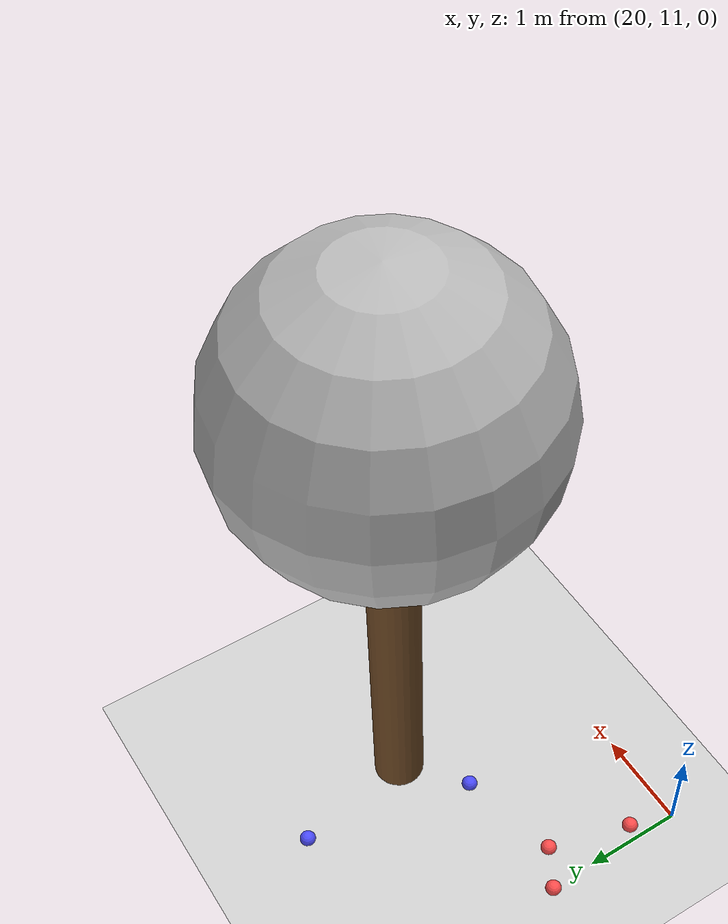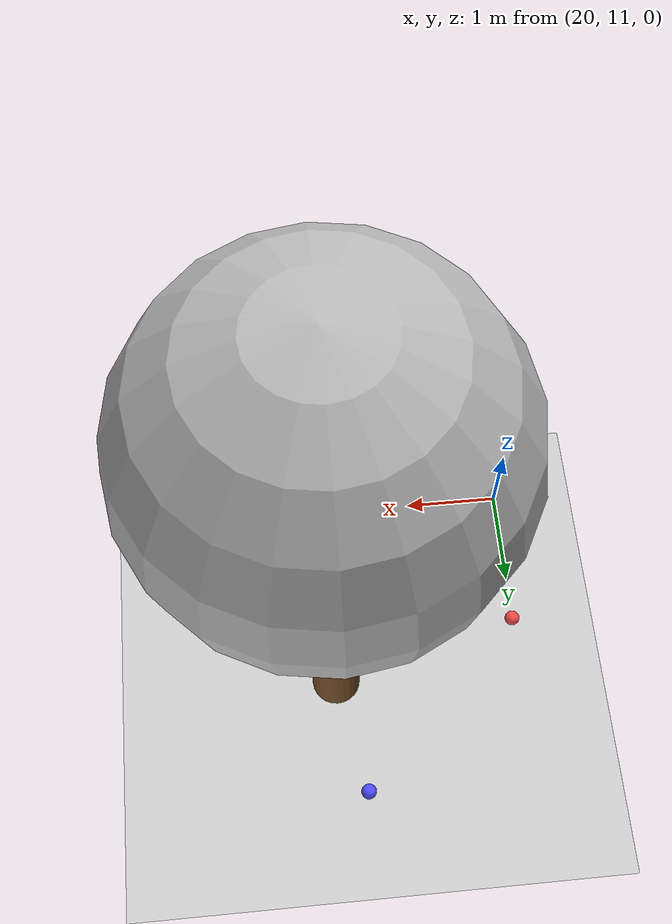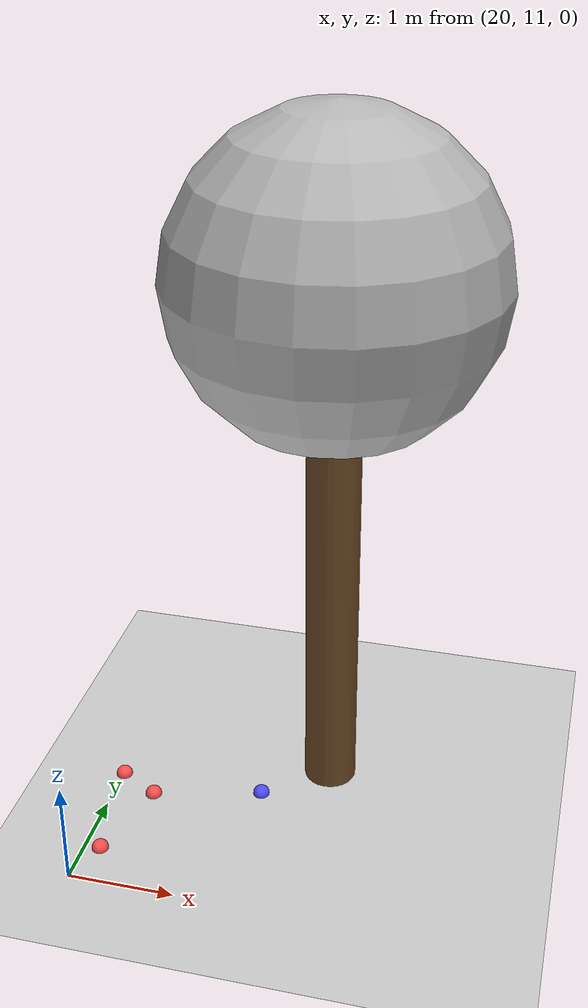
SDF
<sdf version="1.7">
 <world name="default">
  <model name="ground_plane">
   <static>1</static>
   <link name="link">
    <collision name="collision">
     <geometry><plane><normal>0 0 1</normal><size>100 100</size></plane></geometry>
     <surface>
      <contact><collide_bitmask>65535</collide_bitmask></contact>
      <friction><ode><mu>100</mu><mu2>50</mu2></ode></friction>
     </surface>
    </collision>
    <visual name="visual">
     <cast_shadows>0</cast_shadows>
     <geometry><plane><normal>0 0 1</normal><size>100 100</size></plane></geometry>
     <material>
      <script><uri>file://media/materials/scripts/gazebo.material</uri><name>Gazebo/Grey</name></script>
     </material>
    </visual>
   </link>
  </model>
  <model name="tree_simple_62">
   <static>1</static>
   <link name="link">
    <pose>0 0 0.1 0 -0 0</pose>
    <inertial>
     <mass>666</mass>
     <inertia>
      <ixx>0.0861167</ixx>
      <ixy>0</ixy>
      <ixz>0</ixz>
      <iyy>0.0861167</iyy>
      <iyz>0</iyz>
      <izz>0.0861167</izz>
     </inertia>
    </inertial>
    <collision name="collision_trunk">
     <pose>0 0 2 0 -0 0</pose>
     <geometry><cylinder><radius>0.25</radius><length>4</length></cylinder></geometry>
     <surface>
      <contact>
       <poissons_ratio>0.347</poissons_ratio>
       <elastic_modulus>8.8e+09</elastic_modulus>
       <ode><kp>100000</kp><kd>100</kd><max_vel>100</max_vel><min_depth>0.001</min_depth></ode>
      </contact>
      <friction>
       <torsional>
        <coefficient>1</coefficient>
        <use_patch_radius>0</use_patch_radius>
        <surface_radius>0.01</surface_radius>
       </torsional>
      </friction>
     </surface>
    </collision>
    <collision name="collision_treetop">
     <pose>0 0 5.2 0 -0 0</pose>
     <geometry><sphere><radius>1.5</radius></sphere></geometry>
     <surface>
      <contact>
       <poissons_ratio>0.347</poissons_ratio>
       <elastic_modulus>8.8e+09</elastic_modulus>
       <ode><kp>100000</kp><kd>100</kd><max_vel>100</max_vel><min_depth>0.001</min_depth></ode>
      </contact>
      <friction>
       <torsional>
        <coefficient>1</coefficient>
        <use_patch_radius>0</use_patch_radius>
        <surface_radius>0.01</surface_radius>
       </torsional>
      </friction>
     </surface>
    </collision>
    <visual name="trunk">
     <pose>0 0 2 0 -0 0</pose>
     <geometry><cylinder><radius>0.25</radius><length>4</length></cylinder></geometry>
     <material>
      <script>
       <uri>model://tree_simple/scripts</uri>
       <uri>model://tree_simple/materials/textures</uri>
       <name>TreeSimple/Trunk</name>
      </script>
     </material>
    </visual>
    <visual name="treetop">
     <pose>0 0 5.2 0 -0 0</pose>
     <geometry><sphere><radius>1.5</radius></sphere></geometry>
     <material>
      <script>
       <uri>model://tree_simple/scripts</uri>
       <uri>model://tree_simple/materials/textures</uri>
       <name>TreeSimple/Treetop</name>
      </script>
     </material>
    </visual>
   </link>
   <pose>22 13 -0.1 0 -0 0</pose>
  </model>
  <model name="seed_blue_136">
   <link name="link">
    <inertial>
     <mass>1</mass>
     <inertia><ixx>0.1</ixx><ixy>0</ixy><ixz>0</ixz><iyy>0.1</iyy><iyz>0</iyz><izz>0.1</izz></inertia>
    </inertial>
    <visual name="visual">
     <geometry><sphere><radius>0.08</radius></sphere></geometry>
     <material>
      <script><name>Gazebo/Grey</name><uri>file://media/materials/scripts/gazebo.material</uri></script>
      <shader type="pixel"><normal_map>__default__</normal_map></shader>
      <ambient>0.3 0.3 1 1</ambient>
      <diffuse>0.7 0.7 0.7 1</diffuse>
      <specular>0.01 0.01 0.01 1</specular>
      <emissive>0 0 0 1</emissive>
     </material>
    </visual>
    <collision name="collision">
     <geometry><sphere><radius>0.0005</radius></sphere></geometry>
     <surface>
      <friction>
       <ode><mu>1</mu><mu2>1</mu2><fdir1>0 0 0</fdir1><slip1>0</slip1><slip2>0</slip2></ode>
       <torsional>
        <coefficient>1</coefficient>
        <patch_radius>0</patch_radius>
        <surface_radius>0</surface_radius>
        <use_patch_radius>1</use_patch_radius>
        <ode><slip>0</slip></ode>
       </torsional>
      </friction>
      <bounce><restitution_coefficient>0</restitution_coefficient><threshold>1e+06</threshold></bounce>
      <contact>
       <collide_without_contact>0</collide_without_contact>
       <collide_without_contact_bitmask>1</collide_without_contact_bitmask>
       <collide_bitmask>1</collide_bitmask>
       <ode>
        <soft_cfm>0</soft_cfm>
        <soft_erp>0.2</soft_erp>
        <kp>1e+13</kp>
        <kd>1</kd>
        <max_vel>0.01</max_vel>
        <min_depth>0</min_depth>
       </ode>
       <bullet>
        <split_impulse>1</split_impulse>
        <split_impulse_penetration_threshold>-0.01</split_impulse_penetration_threshold>
        <soft_cfm>0</soft_cfm>
        <soft_erp>0.2</soft_erp>
        <kp>1e+13</kp>
        <kd>1</kd>
       </bullet>
      </contact>
     </surface>
    </collision>
   </link>
   <static>0</static>
   <pose>21.7656 14.2199 0.0005 0 -0 0</pose>
  </model>
  <model name="seed_blue_141">
   <link name="link">
    <inertial>
     <mass>1</mass>
     <inertia><ixx>0.1</ixx><ixy>0</ixy><ixz>0</ixz><iyy>0.1</iyy><iyz>0</iyz><izz>0.1</izz></inertia>
    </inertial>
    <visual name="visual">
     <geometry><sphere><radius>0.08</radius></sphere></geometry>
     <material>
      <script><name>Gazebo/Grey</name><uri>file://media/materials/scripts/gazebo.material</uri></script>
      <shader type="pixel"><normal_map>__default__</normal_map></shader>
      <ambient>0.3 0.3 1 1</ambient>
      <diffuse>0.7 0.7 0.7 1</diffuse>
      <specular>0.01 0.01 0.01 1</specular>
      <emissive>0 0 0 1</emissive>
     </material>
    </visual>
    <collision name="collision">
     <geometry><sphere><radius>0.0005</radius></sphere></geometry>
     <surface>
      <friction>
       <ode><mu>1</mu><mu2>1</mu2><fdir1>0 0 0</fdir1><slip1>0</slip1><slip2>0</slip2></ode>
       <torsional>
        <coefficient>1</coefficient>
        <patch_radius>0</patch_radius>
        <surface_radius>0</surface_radius>
        <use_patch_radius>1</use_patch_radius>
        <ode><slip>0</slip></ode>
       </torsional>
      </friction>
      <bounce><restitution_coefficient>0</restitution_coefficient><threshold>1e+06</threshold></bounce>
      <contact>
       <collide_without_contact>0</collide_without_contact>
       <collide_without_contact_bitmask>1</collide_without_contact_bitmask>
       <collide_bitmask>1</collide_bitmask>
       <ode>
        <soft_cfm>0</soft_cfm>
        <soft_erp>0.2</soft_erp>
        <kp>1e+13</kp>
        <kd>1</kd>
        <max_vel>0.01</max_vel>
        <min_depth>0</min_depth>
       </ode>
       <bullet>
        <split_impulse>1</split_impulse>
        <split_impulse_penetration_threshold>-0.01</split_impulse_penetration_threshold>
        <soft_cfm>0</soft_cfm>
        <soft_erp>0.2</soft_erp>
        <kp>1e+13</kp>
        <kd>1</kd>
       </bullet>
      </contact>
     </surface>
    </collision>
   </link>
   <static>0</static>
   <pose>21.4153 12.512 0.0005 0 -0 0</pose>
  </model>
  <model name="seed_red_266">
   <link name="link">
    <inertial>
     <mass>1</mass>
     <inertia><ixx>0.1</ixx><ixy>0</ixy><ixz>0</ixz><iyy>0.1</iyy><iyz>0</iyz><izz>0.1</izz></inertia>
    </inertial>
    <visual name="visual">
     <geometry><sphere><radius>0.08</radius></sphere></geometry>
     <material>
      <script><name>Gazebo/Grey</name><uri>file://media/materials/scripts/gazebo.material</uri></script>
      <shader type="pixel"><normal_map>__default__</normal_map></shader>
      <ambient>1 0.3 0.3 1</ambient>
      <diffuse>0.7 0.7 0.7 1</diffuse>
      <specular>0.01 0.01 0.01 1</specular>
      <emissive>0 0 0 1</emissive>
     </material>
    </visual>
    <collision name="collision">
     <geometry><sphere><radius>0.0005</radius></sphere></geometry>
     <surface>
      <friction>
       <ode><mu>1</mu><mu2>1</mu2><fdir1>0 0 0</fdir1><slip1>0</slip1><slip2>0</slip2></ode>
       <torsional>
        <coefficient>1</coefficient>
        <patch_radius>0</patch_radius>
        <surface_radius>0</surface_radius>
        <use_patch_radius>1</use_patch_radius>
        <ode><slip>0</slip></ode>
       </torsional>
      </friction>
      <bounce><restitution_coefficient>0</restitution_coefficient><threshold>1e+06</threshold></bounce>
      <contact>
       <collide_without_contact>0</collide_without_contact>
       <collide_without_contact_bitmask>1</collide_without_contact_bitmask>
       <collide_bitmask>1</collide_bitmask>
       <ode>
        <soft_cfm>0</soft_cfm>
        <soft_erp>0.2</soft_erp>
        <kp>1e+13</kp>
        <kd>1</kd>
        <max_vel>0.01</max_vel>
        <min_depth>0</min_depth>
       </ode>
       <bullet>
        <split_impulse>1</split_impulse>
        <split_impulse_penetration_threshold>-0.01</split_impulse_penetration_threshold>
        <soft_cfm>0</soft_cfm>
        <soft_erp>0.2</soft_erp>
        <kp>1e+13</kp>
        <kd>1</kd>
       </bullet>
      </contact>
     </surface>
    </collision>
   </link>
   <static>0</static>
   <pose>20.147 11.4184 0.0005 0 -0 0</pose>
  </model>
  <model name="seed_red_267">
   <link name="link">
    <inertial>
     <mass>1</mass>
     <inertia><ixx>0.1</ixx><ixy>0</ixy><ixz>0</ixz><iyy>0.1</iyy><iyz>0</iyz><izz>0.1</izz></inertia>
    </inertial>
    <visual name="visual">
     <geometry><sphere><radius>0.08</radius></sphere></geometry>
     <material>
      <script><name>Gazebo/Grey</name><uri>file://media/materials/scripts/gazebo.material</uri></script>
      <shader type="pixel"><normal_map>__default__</normal_map></shader>
      <ambient>1 0.3 0.3 1</ambient>
      <diffuse>0.7 0.7 0.7 1</diffuse>
      <specular>0.01 0.01 0.01 1</specular>
      <emissive>0 0 0 1</emissive>
     </material>
    </visual>
    <collision name="collision">
     <geometry><sphere><radius>0.0005</radius></sphere></geometry>
     <surface>
      <friction>
       <ode><mu>1</mu><mu2>1</mu2><fdir1>0 0 0</fdir1><slip1>0</slip1><slip2>0</slip2></ode>
       <torsional>
        <coefficient>1</coefficient>
        <patch_radius>0</patch_radius>
        <surface_radius>0</surface_radius>
        <use_patch_radius>1</use_patch_radius>
        <ode><slip>0</slip></ode>
       </torsional>
      </friction>
      <bounce><restitution_coefficient>0</restitution_coefficient><threshold>1e+06</threshold></bounce>
      <contact>
       <collide_without_contact>0</collide_without_contact>
       <collide_without_contact_bitmask>1</collide_without_contact_bitmask>
       <collide_bitmask>1</collide_bitmask>
       <ode>
        <soft_cfm>0</soft_cfm>
        <soft_erp>0.2</soft_erp>
        <kp>1e+13</kp>
        <kd>1</kd>
        <max_vel>0.01</max_vel>
        <min_depth>0</min_depth>
       </ode>
       <bullet>
        <split_impulse>1</split_impulse>
        <split_impulse_penetration_threshold>-0.01</split_impulse_penetration_threshold>
        <soft_cfm>0</soft_cfm>
        <soft_erp>0.2</soft_erp>
        <kp>1e+13</kp>
        <kd>1</kd>
       </bullet>
      </contact>
     </surface>
    </collision>
   </link>
   <static>0</static>
   <pose>20.0037 12.4669 0.0005 0 -0 0</pose>
  </model>
  <model name="seed_red_268">
   <link name="link">
    <inertial>
     <mass>1</mass>
     <inertia><ixx>0.1</ixx><ixy>0</ixy><ixz>0</ixz><iyy>0.1</iyy><iyz>0</iyz><izz>0.1</izz></inertia>
    </inertial>
    <visual name="visual">
     <geometry><sphere><radius>0.08</radius></sphere></geometry>
     <material>
      <script><name>Gazebo/Grey</name><uri>file://media/materials/scripts/gazebo.material</uri></script>
      <shader type="pixel"><normal_map>__default__</normal_map></shader>
      <ambient>1 0.3 0.3 1</ambient>
      <diffuse>0.7 0.7 0.7 1</diffuse>
      <specular>0.01 0.01 0.01 1</specular>
      <emissive>0 0 0 1</emissive>
     </material>
    </visual>
    <collision name="collision">
     <geometry><sphere><radius>0.0005</radius></sphere></geometry>
     <surface>
      <friction>
       <ode><mu>1</mu><mu2>1</mu2><fdir1>0 0 0</fdir1><slip1>0</slip1><slip2>0</slip2></ode>
       <torsional>
        <coefficient>1</coefficient>
        <patch_radius>0</patch_radius>
        <surface_radius>0</surface_radius>
        <use_patch_radius>1</use_patch_radius>
        <ode><slip>0</slip></ode>
       </torsional>
      </friction>
      <bounce><restitution_coefficient>0</restitution_coefficient><threshold>1e+06</threshold></bounce>
      <contact>
       <collide_without_contact>0</collide_without_contact>
       <collide_without_contact_bitmask>1</collide_without_contact_bitmask>
       <collide_bitmask>1</collide_bitmask>
       <ode>
        <soft_cfm>0</soft_cfm>
        <soft_erp>0.2</soft_erp>
        <kp>1e+13</kp>
        <kd>1</kd>
        <max_vel>0.01</max_vel>
        <min_depth>0</min_depth>
       </ode>
       <bullet>
        <split_impulse>1</split_impulse>
        <split_impulse_penetration_threshold>-0.01</split_impulse_penetration_threshold>
        <soft_cfm>0</soft_cfm>
        <soft_erp>0.2</soft_erp>
        <kp>1e+13</kp>
        <kd>1</kd>
       </bullet>
      </contact>
     </surface>
    </collision>
   </link>
   <static>0</static>
   <pose>20.3863 12.2511 0.0005 0 -0 0</pose>
  </model>
 </world>
</sdf>
